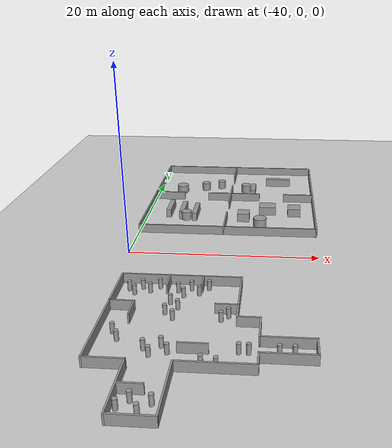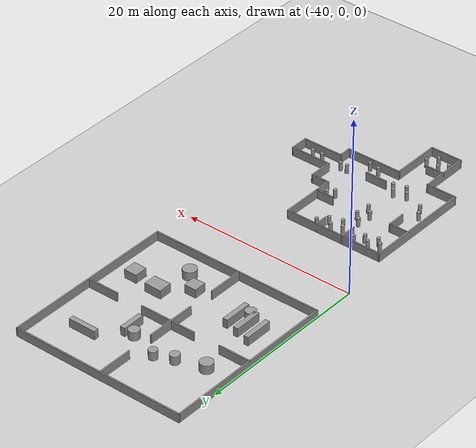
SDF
<sdf version="1.6">
 <world name="martha_training_islands">
  <include><uri>model://sun</uri></include>
  <include><uri>model://ground_plane</uri></include>
  <model name="four_rooms__four_rooms_obstacles">
   <pose>-30 15 0 0 0 0</pose>
   <static>true</static>
   <link name="body">
    <collision name="col_0">
     <pose>0.0000 -10.0000 0.5000 0 0 0.00000</pose>
     <geometry><box><size>20.1500 0.1500 1.0000</size></box></geometry>
    </collision>
    <visual name="vis_0">
     <pose>0.0000 -10.0000 0.5000 0 0 0.00000</pose>
     <geometry><box><size>20.1500 0.1500 1.0000</size></box></geometry>
     <material>
      <script><uri>file://media/materials/scripts/gazebo.material</uri><name>Gazebo/Grey</name></script>
     </material>
    </visual>
    <collision name="col_1">
     <pose>10.0000 0.0000 0.5000 0 0 1.57080</pose>
     <geometry><box><size>20.1500 0.1500 1.0000</size></box></geometry>
    </collision>
    <visual name="vis_1">
     <pose>10.0000 0.0000 0.5000 0 0 1.57080</pose>
     <geometry><box><size>20.1500 0.1500 1.0000</size></box></geometry>
     <material>
      <script><uri>file://media/materials/scripts/gazebo.material</uri><name>Gazebo/Grey</name></script>
     </material>
    </visual>
    <collision name="col_2">
     <pose>0.0000 10.0000 0.5000 0 0 3.14159</pose>
     <geometry><box><size>20.1500 0.1500 1.0000</size></box></geometry>
    </collision>
    <visual name="vis_2">
     <pose>0.0000 10.0000 0.5000 0 0 3.14159</pose>
     <geometry><box><size>20.1500 0.1500 1.0000</size></box></geometry>
     <material>
      <script><uri>file://media/materials/scripts/gazebo.material</uri><name>Gazebo/Grey</name></script>
     </material>
    </visual>
    <collision name="col_3">
     <pose>-10.0000 0.0000 0.5000 0 0 -1.57080</pose>
     <geometry><box><size>20.1500 0.1500 1.0000</size></box></geometry>
    </collision>
    <visual name="vis_3">
     <pose>-10.0000 0.0000 0.5000 0 0 -1.57080</pose>
     <geometry><box><size>20.1500 0.1500 1.0000</size></box></geometry>
     <material>
      <script><uri>file://media/materials/scripts/gazebo.material</uri><name>Gazebo/Grey</name></script>
     </material>
    </visual>
    <collision name="col_4">
     <pose>-0.4000 -8.0000 0.5000 0 0 1.57080</pose>
     <geometry><box><size>4.1500 0.1500 1.0000</size></box></geometry>
    </collision>
    <visual name="vis_4">
     <pose>-0.4000 -8.0000 0.5000 0 0 1.57080</pose>
     <geometry><box><size>4.1500 0.1500 1.0000</size></box></geometry>
     <material>
      <script><uri>file://media/materials/scripts/gazebo.material</uri><name>Gazebo/Grey</name></script>
     </material>
    </visual>
    <collision name="col_5">
     <pose>-0.4000 0.0000 0.5000 0 0 1.57080</pose>
     <geometry><box><size>5.7500 0.1500 1.0000</size></box></geometry>
    </collision>
    <visual name="vis_5">
     <pose>-0.4000 0.0000 0.5000 0 0 1.57080</pose>
     <geometry><box><size>5.7500 0.1500 1.0000</size></box></geometry>
     <material>
      <script><uri>file://media/materials/scripts/gazebo.material</uri><name>Gazebo/Grey</name></script>
     </material>
    </visual>
    <collision name="col_6">
     <pose>-0.4000 8.0000 0.5000 0 0 1.57080</pose>
     <geometry><box><size>4.1500 0.1500 1.0000</size></box></geometry>
    </collision>
    <visual name="vis_6">
     <pose>-0.4000 8.0000 0.5000 0 0 1.57080</pose>
     <geometry><box><size>4.1500 0.1500 1.0000</size></box></geometry>
     <material>
      <script><uri>file://media/materials/scripts/gazebo.material</uri><name>Gazebo/Grey</name></script>
     </material>
    </visual>
    <collision name="col_7">
     <pose>-8.2000 0.0000 0.5000 0 0 0.00000</pose>
     <geometry><box><size>3.7500 0.1500 1.0000</size></box></geometry>
    </collision>
    <visual name="vis_7">
     <pose>-8.2000 0.0000 0.5000 0 0 0.00000</pose>
     <geometry><box><size>3.7500 0.1500 1.0000</size></box></geometry>
     <material>
      <script><uri>file://media/materials/scripts/gazebo.material</uri><name>Gazebo/Grey</name></script>
     </material>
    </visual>
    <collision name="col_8">
     <pose>0.0000 0.0000 0.5000 0 0 0.00000</pose>
     <geometry><box><size>6.5500 0.1500 1.0000</size></box></geometry>
    </collision>
    <visual name="vis_8">
     <pose>0.0000 0.0000 0.5000 0 0 0.00000</pose>
     <geometry><box><size>6.5500 0.1500 1.0000</size></box></geometry>
     <material>
      <script><uri>file://media/materials/scripts/gazebo.material</uri><name>Gazebo/Grey</name></script>
     </material>
    </visual>
    <collision name="col_9">
     <pose>8.2000 0.0000 0.5000 0 0 0.00000</pose>
     <geometry><box><size>3.7500 0.1500 1.0000</size></box></geometry>
    </collision>
    <visual name="vis_9">
     <pose>8.2000 0.0000 0.5000 0 0 0.00000</pose>
     <geometry><box><size>3.7500 0.1500 1.0000</size></box></geometry>
     <material>
      <script><uri>file://media/materials/scripts/gazebo.material</uri><name>Gazebo/Grey</name></script>
     </material>
    </visual>
    <collision name="col_10">
     <pose>5.6000 5.6000 0.5000 0 0 0.00000</pose>
     <geometry><box><size>3.2000 0.5600 1.0000</size></box></geometry>
    </collision>
    <visual name="vis_10">
     <pose>5.6000 5.6000 0.5000 0 0 0.00000</pose>
     <geometry><box><size>3.2000 0.5600 1.0000</size></box></geometry>
     <material>
      <script><uri>file://media/materials/scripts/gazebo.material</uri><name>Gazebo/Grey</name></script>
     </material>
    </visual>
    <collision name="col_11">
     <pose>4.4000 -3.6000 0.5000 0 0 0.00000</pose>
     <geometry><box><size>2.0000 1.5000 1.0000</size></box></geometry>
    </collision>
    <visual name="vis_11">
     <pose>4.4000 -3.6000 0.5000 0 0 0.00000</pose>
     <geometry><box><size>2.0000 1.5000 1.0000</size></box></geometry>
     <material>
      <script><uri>file://media/materials/scripts/gazebo.material</uri><name>Gazebo/Grey</name></script>
     </material>
    </visual>
    <collision name="col_12">
     <pose>1.6000 -5.8000 0.5000 0 0 0.00000</pose>
     <geometry><box><size>1.4000 1.4000 1.0000</size></box></geometry>
    </collision>
    <visual name="vis_12">
     <pose>1.6000 -5.8000 0.5000 0 0 0.00000</pose>
     <geometry><box><size>1.4000 1.4000 1.0000</size></box></geometry>
     <material>
      <script><uri>file://media/materials/scripts/gazebo.material</uri><name>Gazebo/Grey</name></script>
     </material>
    </visual>
    <collision name="col_13">
     <pose>-7.4000 -4.2000 0.5000 0 0 0.00000</pose>
     <geometry><box><size>0.5600 3.2000 1.0000</size></box></geometry>
    </collision>
    <visual name="vis_13">
     <pose>-7.4000 -4.2000 0.5000 0 0 0.00000</pose>
     <geometry><box><size>0.5600 3.2000 1.0000</size></box></geometry>
     <material>
      <script><uri>file://media/materials/scripts/gazebo.material</uri><name>Gazebo/Grey</name></script>
     </material>
    </visual>
    <collision name="col_14">
     <pose>-5.8000 -4.6000 0.5000 0 0 0.00000</pose>
     <geometry><box><size>0.5600 3.2000 1.0000</size></box></geometry>
    </collision>
    <visual name="vis_14">
     <pose>-5.8000 -4.6000 0.5000 0 0 0.00000</pose>
     <geometry><box><size>0.5600 3.2000 1.0000</size></box></geometry>
     <material>
      <script><uri>file://media/materials/scripts/gazebo.material</uri><name>Gazebo/Grey</name></script>
     </material>
    </visual>
    <collision name="col_15">
     <pose>-4.2000 -5.0000 0.5000 0 0 0.00000</pose>
     <geometry><box><size>0.5600 3.2000 1.0000</size></box></geometry>
    </collision>
    <visual name="vis_15">
     <pose>-4.2000 -5.0000 0.5000 0 0 0.00000</pose>
     <geometry><box><size>0.5600 3.2000 1.0000</size></box></geometry>
     <material>
      <script><uri>file://media/materials/scripts/gazebo.material</uri><name>Gazebo/Grey</name></script>
     </material>
    </visual>
    <collision name="col_16">
     <pose>2.4000 2.4000 0.5000 0 0 0.00000</pose>
     <geometry><box><size>0.5600 2.6000 1.0000</size></box></geometry>
    </collision>
    <visual name="vis_16">
     <pose>2.4000 2.4000 0.5000 0 0 0.00000</pose>
     <geometry><box><size>0.5600 2.6000 1.0000</size></box></geometry>
     <material>
      <script><uri>file://media/materials/scripts/gazebo.material</uri><name>Gazebo/Grey</name></script>
     </material>
    </visual>
    <collision name="col_17">
     <pose>7.6000 -4.0000 0.5000 0 0 0.00000</pose>
     <geometry><box><size>1.5000 1.5000 1.0000</size></box></geometry>
    </collision>
    <visual name="vis_17">
     <pose>7.6000 -4.0000 0.5000 0 0 0.00000</pose>
     <geometry><box><size>1.5000 1.5000 1.0000</size></box></geometry>
     <material>
      <script><uri>file://media/materials/scripts/gazebo.material</uri><name>Gazebo/Grey</name></script>
     </material>
    </visual>
    <collision name="col_18">
     <pose>-7.0000 2.6000 0.5000 0 0 0.00000</pose>
     <geometry><cylinder><radius>0.7200</radius><length>1.0000</length></cylinder></geometry>
    </collision>
    <visual name="vis_18">
     <pose>-7.0000 2.6000 0.5000 0 0 0.00000</pose>
     <geometry><cylinder><radius>0.7200</radius><length>1.0000</length></cylinder></geometry>
     <material>
      <script><uri>file://media/materials/scripts/gazebo.material</uri><name>Gazebo/Grey</name></script>
     </material>
    </visual>
    <collision name="col_19">
     <pose>-4.0000 3.6000 0.5000 0 0 0.00000</pose>
     <geometry><cylinder><radius>0.5200</radius><length>1.0000</length></cylinder></geometry>
    </collision>
    <visual name="vis_19">
     <pose>-4.0000 3.6000 0.5000 0 0 0.00000</pose>
     <geometry><cylinder><radius>0.5200</radius><length>1.0000</length></cylinder></geometry>
     <material>
      <script><uri>file://media/materials/scripts/gazebo.material</uri><name>Gazebo/Grey</name></script>
     </material>
    </visual>
    <collision name="col_20">
     <pose>-2.0000 4.4000 0.5000 0 0 0.00000</pose>
     <geometry><cylinder><radius>0.4800</radius><length>1.0000</length></cylinder></geometry>
    </collision>
    <visual name="vis_20">
     <pose>-2.0000 4.4000 0.5000 0 0 0.00000</pose>
     <geometry><cylinder><radius>0.4800</radius><length>1.0000</length></cylinder></geometry>
     <material>
      <script><uri>file://media/materials/scripts/gazebo.material</uri><name>Gazebo/Grey</name></script>
     </material>
    </visual>
    <collision name="col_21">
     <pose>1.4000 3.2000 0.5000 0 0 0.00000</pose>
     <geometry><cylinder><radius>0.6000</radius><length>1.0000</length></cylinder></geometry>
    </collision>
    <visual name="vis_21">
     <pose>1.4000 3.2000 0.5000 0 0 0.00000</pose>
     <geometry><cylinder><radius>0.6000</radius><length>1.0000</length></cylinder></geometry>
     <material>
      <script><uri>file://media/materials/scripts/gazebo.material</uri><name>Gazebo/Grey</name></script>
     </material>
    </visual>
    <collision name="col_22">
     <pose>3.6000 -7.4000 0.5000 0 0 0.00000</pose>
     <geometry><cylinder><radius>0.7600</radius><length>1.0000</length></cylinder></geometry>
    </collision>
    <visual name="vis_22">
     <pose>3.6000 -7.4000 0.5000 0 0 0.00000</pose>
     <geometry><cylinder><radius>0.7600</radius><length>1.0000</length></cylinder></geometry>
     <material>
      <script><uri>file://media/materials/scripts/gazebo.material</uri><name>Gazebo/Grey</name></script>
     </material>
    </visual>
    <collision name="col_23">
     <pose>-5.2000 -6.0000 0.5000 0 0 0.00000</pose>
     <geometry><cylinder><radius>0.6000</radius><length>1.0000</length></cylinder></geometry>
    </collision>
    <visual name="vis_23">
     <pose>-5.2000 -6.0000 0.5000 0 0 0.00000</pose>
     <geometry><cylinder><radius>0.6000</radius><length>1.0000</length></cylinder></geometry>
     <material>
      <script><uri>file://media/materials/scripts/gazebo.material</uri><name>Gazebo/Grey</name></script>
     </material>
    </visual>
   </link>
  </model>
  <model name="roblab__roblab_obstacles">
   <pose>-30 -15 0 0 0 0</pose>
   <static>true</static>
   <link name="body">
    <collision name="col_0">
     <pose>-3.3000 9.0000 0.5000 0 0 0.00000</pose>
     <geometry><box><size>11.5500 0.1500 1.0000</size></box></geometry>
    </collision>
    <visual name="vis_0">
     <pose>-3.3000 9.0000 0.5000 0 0 0.00000</pose>
     <geometry><box><size>11.5500 0.1500 1.0000</size></box></geometry>
     <material>
      <script><uri>file://media/materials/scripts/gazebo.material</uri><name>Gazebo/Grey</name></script>
     </material>
    </visual>
    <collision name="col_1">
     <pose>2.4000 5.8000 0.5000 0 0 -1.57080</pose>
     <geometry><box><size>6.5500 0.1500 1.0000</size></box></geometry>
    </collision>
    <visual name="vis_1">
     <pose>2.4000 5.8000 0.5000 0 0 -1.57080</pose>
     <geometry><box><size>6.5500 0.1500 1.0000</size></box></geometry>
     <material>
      <script><uri>file://media/materials/scripts/gazebo.material</uri><name>Gazebo/Grey</name></script>
     </material>
    </visual>
    <collision name="col_2">
     <pose>3.4000 2.6000 0.5000 0 0 0.00000</pose>
     <geometry><box><size>2.1500 0.1500 1.0000</size></box></geometry>
    </collision>
    <visual name="vis_2">
     <pose>3.4000 2.6000 0.5000 0 0 0.00000</pose>
     <geometry><box><size>2.1500 0.1500 1.0000</size></box></geometry>
     <material>
      <script><uri>file://media/materials/scripts/gazebo.material</uri><name>Gazebo/Grey</name></script>
     </material>
    </visual>
    <collision name="col_3">
     <pose>4.4000 1.3000 0.5000 0 0 -1.57080</pose>
     <geometry><box><size>2.7500 0.1500 1.0000</size></box></geometry>
    </collision>
    <visual name="vis_3">
     <pose>4.4000 1.3000 0.5000 0 0 -1.57080</pose>
     <geometry><box><size>2.7500 0.1500 1.0000</size></box></geometry>
     <material>
      <script><uri>file://media/materials/scripts/gazebo.material</uri><name>Gazebo/Grey</name></script>
     </material>
    </visual>
    <collision name="col_4">
     <pose>6.7000 0.0000 0.5000 0 0 0.00000</pose>
     <geometry><box><size>4.7500 0.1500 1.0000</size></box></geometry>
    </collision>
    <visual name="vis_4">
     <pose>6.7000 0.0000 0.5000 0 0 0.00000</pose>
     <geometry><box><size>4.7500 0.1500 1.0000</size></box></geometry>
     <material>
      <script><uri>file://media/materials/scripts/gazebo.material</uri><name>Gazebo/Grey</name></script>
     </material>
    </visual>
    <collision name="col_5">
     <pose>9.0000 -1.0000 0.5000 0 0 -1.57080</pose>
     <geometry><box><size>2.1500 0.1500 1.0000</size></box></geometry>
    </collision>
    <visual name="vis_5">
     <pose>9.0000 -1.0000 0.5000 0 0 -1.57080</pose>
     <geometry><box><size>2.1500 0.1500 1.0000</size></box></geometry>
     <material>
      <script><uri>file://media/materials/scripts/gazebo.material</uri><name>Gazebo/Grey</name></script>
     </material>
    </visual>
    <collision name="col_6">
     <pose>6.7000 -2.0000 0.5000 0 0 3.14159</pose>
     <geometry><box><size>4.7500 0.1500 1.0000</size></box></geometry>
    </collision>
    <visual name="vis_6">
     <pose>6.7000 -2.0000 0.5000 0 0 3.14159</pose>
     <geometry><box><size>4.7500 0.1500 1.0000</size></box></geometry>
     <material>
      <script><uri>file://media/materials/scripts/gazebo.material</uri><name>Gazebo/Grey</name></script>
     </material>
    </visual>
    <collision name="col_7">
     <pose>4.4000 -2.7000 0.5000 0 0 -1.57080</pose>
     <geometry><box><size>1.5500 0.1500 1.0000</size></box></geometry>
    </collision>
    <visual name="vis_7">
     <pose>4.4000 -2.7000 0.5000 0 0 -1.57080</pose>
     <geometry><box><size>1.5500 0.1500 1.0000</size></box></geometry>
     <material>
      <script><uri>file://media/materials/scripts/gazebo.material</uri><name>Gazebo/Grey</name></script>
     </material>
    </visual>
    <collision name="col_8">
     <pose>1.2000 -3.4000 0.5000 0 0 3.14159</pose>
     <geometry><box><size>6.5500 0.1500 1.0000</size></box></geometry>
    </collision>
    <visual name="vis_8">
     <pose>1.2000 -3.4000 0.5000 0 0 3.14159</pose>
     <geometry><box><size>6.5500 0.1500 1.0000</size></box></geometry>
     <material>
      <script><uri>file://media/materials/scripts/gazebo.material</uri><name>Gazebo/Grey</name></script>
     </material>
    </visual>
    <collision name="col_9">
     <pose>-2.0000 -6.2000 0.5000 0 0 -1.57080</pose>
     <geometry><box><size>5.7500 0.1500 1.0000</size></box></geometry>
    </collision>
    <visual name="vis_9">
     <pose>-2.0000 -6.2000 0.5000 0 0 -1.57080</pose>
     <geometry><box><size>5.7500 0.1500 1.0000</size></box></geometry>
     <material>
      <script><uri>file://media/materials/scripts/gazebo.material</uri><name>Gazebo/Grey</name></script>
     </material>
    </visual>
    <collision name="col_10">
     <pose>-3.8000 -9.0000 0.5000 0 0 3.14159</pose>
     <geometry><box><size>3.7500 0.1500 1.0000</size></box></geometry>
    </collision>
    <visual name="vis_10">
     <pose>-3.8000 -9.0000 0.5000 0 0 3.14159</pose>
     <geometry><box><size>3.7500 0.1500 1.0000</size></box></geometry>
     <material>
      <script><uri>file://media/materials/scripts/gazebo.material</uri><name>Gazebo/Grey</name></script>
     </material>
    </visual>
    <collision name="col_11">
     <pose>-5.6000 -6.2000 0.5000 0 0 1.57080</pose>
     <geometry><box><size>5.7500 0.1500 1.0000</size></box></geometry>
    </collision>
    <visual name="vis_11">
     <pose>-5.6000 -6.2000 0.5000 0 0 1.57080</pose>
     <geometry><box><size>5.7500 0.1500 1.0000</size></box></geometry>
     <material>
      <script><uri>file://media/materials/scripts/gazebo.material</uri><name>Gazebo/Grey</name></script>
     </material>
    </visual>
    <collision name="col_12">
     <pose>-7.3000 -3.4000 0.5000 0 0 3.14159</pose>
     <geometry><box><size>3.5500 0.1500 1.0000</size></box></geometry>
    </collision>
    <visual name="vis_12">
     <pose>-7.3000 -3.4000 0.5000 0 0 3.14159</pose>
     <geometry><box><size>3.5500 0.1500 1.0000</size></box></geometry>
     <material>
      <script><uri>file://media/materials/scripts/gazebo.material</uri><name>Gazebo/Grey</name></script>
     </material>
    </visual>
    <collision name="col_13">
     <pose>-9.0000 2.8000 0.5000 0 0 1.57080</pose>
     <geometry><box><size>12.5500 0.1500 1.0000</size></box></geometry>
    </collision>
    <visual name="vis_13">
     <pose>-9.0000 2.8000 0.5000 0 0 1.57080</pose>
     <geometry><box><size>12.5500 0.1500 1.0000</size></box></geometry>
     <material>
      <script><uri>file://media/materials/scripts/gazebo.material</uri><name>Gazebo/Grey</name></script>
     </material>
    </visual>
    <collision name="col_14">
     <pose>-7.9000 4.4000 0.5000 0 0 0.00000</pose>
     <geometry><box><size>2.3500 0.1500 1.0000</size></box></geometry>
    </collision>
    <visual name="vis_14">
     <pose>-7.9000 4.4000 0.5000 0 0 0.00000</pose>
     <geometry><box><size>2.3500 0.1500 1.0000</size></box></geometry>
     <material>
      <script><uri>file://media/materials/scripts/gazebo.material</uri><name>Gazebo/Grey</name></script>
     </material>
    </visual>
    <collision name="col_15">
     <pose>-6.8000 3.4000 0.5000 0 0 -1.57080</pose>
     <geometry><box><size>2.1500 0.1500 1.0000</size></box></geometry>
    </collision>
    <visual name="vis_15">
     <pose>-6.8000 3.4000 0.5000 0 0 -1.57080</pose>
     <geometry><box><size>2.1500 0.1500 1.0000</size></box></geometry>
     <material>
      <script><uri>file://media/materials/scripts/gazebo.material</uri><name>Gazebo/Grey</name></script>
     </material>
    </visual>
    <collision name="col_16">
     <pose>-4.4000 8.1000 0.5000 0 0 -1.57080</pose>
     <geometry><box><size>1.9500 0.1500 1.0000</size></box></geometry>
    </collision>
    <visual name="vis_16">
     <pose>-4.4000 8.1000 0.5000 0 0 -1.57080</pose>
     <geometry><box><size>1.9500 0.1500 1.0000</size></box></geometry>
     <material>
      <script><uri>file://media/materials/scripts/gazebo.material</uri><name>Gazebo/Grey</name></script>
     </material>
    </visual>
    <collision name="col_17">
     <pose>-1.2000 8.3000 0.5000 0 0 -1.57080</pose>
     <geometry><box><size>1.5500 0.1500 1.0000</size></box></geometry>
    </collision>
    <visual name="vis_17">
     <pose>-1.2000 8.3000 0.5000 0 0 -1.57080</pose>
     <geometry><box><size>1.5500 0.1500 1.0000</size></box></geometry>
     <material>
      <script><uri>file://media/materials/scripts/gazebo.material</uri><name>Gazebo/Grey</name></script>
     </material>
    </visual>
    <collision name="col_18">
     <pose>1.4000 4.4000 0.5000 0 0 0.00000</pose>
     <geometry><box><size>2.1500 0.1500 1.0000</size></box></geometry>
    </collision>
    <visual name="vis_18">
     <pose>1.4000 4.4000 0.5000 0 0 0.00000</pose>
     <geometry><box><size>2.1500 0.1500 1.0000</size></box></geometry>
     <material>
      <script><uri>file://media/materials/scripts/gazebo.material</uri><name>Gazebo/Grey</name></script>
     </material>
    </visual>
    <collision name="col_19">
     <pose>-4.6000 -6.0000 0.5000 0 0 0.00000</pose>
     <geometry><box><size>2.1500 0.1500 1.0000</size></box></geometry>
    </collision>
    <visual name="vis_19">
     <pose>-4.6000 -6.0000 0.5000 0 0 0.00000</pose>
     <geometry><box><size>2.1500 0.1500 1.0000</size></box></geometry>
     <material>
      <script><uri>file://media/materials/scripts/gazebo.material</uri><name>Gazebo/Grey</name></script>
     </material>
    </visual>
    <collision name="col_20">
     <pose>-0.8000 -1.2000 0.5000 0 0 0.00000</pose>
     <geometry><box><size>2.5500 0.1500 1.0000</size></box></geometry>
    </collision>
    <visual name="vis_20">
     <pose>-0.8000 -1.2000 0.5000 0 0 0.00000</pose>
     <geometry><box><size>2.5500 0.1500 1.0000</size></box></geometry>
     <material>
      <script><uri>file://media/materials/scripts/gazebo.material</uri><name>Gazebo/Grey</name></script>
     </material>
    </visual>
    <collision name="col_21">
     <pose>-8.0000 7.6000 0.5000 0 0 0.00000</pose>
     <geometry><cylinder><radius>0.2000</radius><length>1.0000</length></cylinder></geometry>
    </collision>
    <visual name="vis_21">
     <pose>-8.0000 7.6000 0.5000 0 0 0.00000</pose>
     <geometry><cylinder><radius>0.2000</radius><length>1.0000</length></cylinder></geometry>
     <material>
      <script><uri>file://media/materials/scripts/gazebo.material</uri><name>Gazebo/Grey</name></script>
     </material>
    </visual>
    <collision name="col_22">
     <pose>-7.4000 7.0000 0.5000 0 0 0.00000</pose>
     <geometry><cylinder><radius>0.2000</radius><length>1.0000</length></cylinder></geometry>
    </collision>
    <visual name="vis_22">
     <pose>-7.4000 7.0000 0.5000 0 0 0.00000</pose>
     <geometry><cylinder><radius>0.2000</radius><length>1.0000</length></cylinder></geometry>
     <material>
      <script><uri>file://media/materials/scripts/gazebo.material</uri><name>Gazebo/Grey</name></script>
     </material>
    </visual>
    <collision name="col_23">
     <pose>-6.8000 8.0000 0.5000 0 0 0.00000</pose>
     <geometry><cylinder><radius>0.2000</radius><length>1.0000</length></cylinder></geometry>
    </collision>
    <visual name="vis_23">
     <pose>-6.8000 8.0000 0.5000 0 0 0.00000</pose>
     <geometry><cylinder><radius>0.2000</radius><length>1.0000</length></cylinder></geometry>
     <material>
      <script><uri>file://media/materials/scripts/gazebo.material</uri><name>Gazebo/Grey</name></script>
     </material>
    </visual>
    <collision name="col_24">
     <pose>-6.0000 7.4000 0.5000 0 0 0.00000</pose>
     <geometry><cylinder><radius>0.2000</radius><length>1.0000</length></cylinder></geometry>
    </collision>
    <visual name="vis_24">
     <pose>-6.0000 7.4000 0.5000 0 0 0.00000</pose>
     <geometry><cylinder><radius>0.2000</radius><length>1.0000</length></cylinder></geometry>
     <material>
      <script><uri>file://media/materials/scripts/gazebo.material</uri><name>Gazebo/Grey</name></script>
     </material>
    </visual>
    <collision name="col_25">
     <pose>-5.2000 8.2000 0.5000 0 0 0.00000</pose>
     <geometry><cylinder><radius>0.2000</radius><length>1.0000</length></cylinder></geometry>
    </collision>
    <visual name="vis_25">
     <pose>-5.2000 8.2000 0.5000 0 0 0.00000</pose>
     <geometry><cylinder><radius>0.2000</radius><length>1.0000</length></cylinder></geometry>
     <material>
      <script><uri>file://media/materials/scripts/gazebo.material</uri><name>Gazebo/Grey</name></script>
     </material>
    </visual>
    <collision name="col_26">
     <pose>-3.4000 7.6000 0.5000 0 0 0.00000</pose>
     <geometry><cylinder><radius>0.2000</radius><length>1.0000</length></cylinder></geometry>
    </collision>
    <visual name="vis_26">
     <pose>-3.4000 7.6000 0.5000 0 0 0.00000</pose>
     <geometry><cylinder><radius>0.2000</radius><length>1.0000</length></cylinder></geometry>
     <material>
      <script><uri>file://media/materials/scripts/gazebo.material</uri><name>Gazebo/Grey</name></script>
     </material>
    </visual>
    <collision name="col_27">
     <pose>-2.8000 6.8000 0.5000 0 0 0.00000</pose>
     <geometry><cylinder><radius>0.2000</radius><length>1.0000</length></cylinder></geometry>
    </collision>
    <visual name="vis_27">
     <pose>-2.8000 6.8000 0.5000 0 0 0.00000</pose>
     <geometry><cylinder><radius>0.2000</radius><length>1.0000</length></cylinder></geometry>
     <material>
      <script><uri>file://media/materials/scripts/gazebo.material</uri><name>Gazebo/Grey</name></script>
     </material>
    </visual>
    <collision name="col_28">
     <pose>-2.2000 8.0000 0.5000 0 0 0.00000</pose>
     <geometry><cylinder><radius>0.2000</radius><length>1.0000</length></cylinder></geometry>
    </collision>
    <visual name="vis_28">
     <pose>-2.2000 8.0000 0.5000 0 0 0.00000</pose>
     <geometry><cylinder><radius>0.2000</radius><length>1.0000</length></cylinder></geometry>
     <material>
      <script><uri>file://media/materials/scripts/gazebo.material</uri><name>Gazebo/Grey</name></script>
     </material>
    </visual>
    <collision name="col_29">
     <pose>-1.4000 7.2000 0.5000 0 0 0.00000</pose>
     <geometry><cylinder><radius>0.2000</radius><length>1.0000</length></cylinder></geometry>
    </collision>
    <visual name="vis_29">
     <pose>-1.4000 7.2000 0.5000 0 0 0.00000</pose>
     <geometry><cylinder><radius>0.2000</radius><length>1.0000</length></cylinder></geometry>
     <material>
      <script><uri>file://media/materials/scripts/gazebo.material</uri><name>Gazebo/Grey</name></script>
     </material>
    </visual>
    <collision name="col_30">
     <pose>-0.6000 8.2000 0.5000 0 0 0.00000</pose>
     <geometry><cylinder><radius>0.2000</radius><length>1.0000</length></cylinder></geometry>
    </collision>
    <visual name="vis_30">
     <pose>-0.6000 8.2000 0.5000 0 0 0.00000</pose>
     <geometry><cylinder><radius>0.2000</radius><length>1.0000</length></cylinder></geometry>
     <material>
      <script><uri>file://media/materials/scripts/gazebo.material</uri><name>Gazebo/Grey</name></script>
     </material>
    </visual>
    <collision name="col_31">
     <pose>-3.8000 5.6000 0.5000 0 0 0.00000</pose>
     <geometry><cylinder><radius>0.2000</radius><length>1.0000</length></cylinder></geometry>
    </collision>
    <visual name="vis_31">
     <pose>-3.8000 5.6000 0.5000 0 0 0.00000</pose>
     <geometry><cylinder><radius>0.2000</radius><length>1.0000</length></cylinder></geometry>
     <material>
      <script><uri>file://media/materials/scripts/gazebo.material</uri><name>Gazebo/Grey</name></script>
     </material>
    </visual>
    <collision name="col_32">
     <pose>-3.0000 4.8000 0.5000 0 0 0.00000</pose>
     <geometry><cylinder><radius>0.2000</radius><length>1.0000</length></cylinder></geometry>
    </collision>
    <visual name="vis_32">
     <pose>-3.0000 4.8000 0.5000 0 0 0.00000</pose>
     <geometry><cylinder><radius>0.2000</radius><length>1.0000</length></cylinder></geometry>
     <material>
      <script><uri>file://media/materials/scripts/gazebo.material</uri><name>Gazebo/Grey</name></script>
     </material>
    </visual>
    <collision name="col_33">
     <pose>-4.0000 4.0000 0.5000 0 0 0.00000</pose>
     <geometry><cylinder><radius>0.2000</radius><length>1.0000</length></cylinder></geometry>
    </collision>
    <visual name="vis_33">
     <pose>-4.0000 4.0000 0.5000 0 0 0.00000</pose>
     <geometry><cylinder><radius>0.2000</radius><length>1.0000</length></cylinder></geometry>
     <material>
      <script><uri>file://media/materials/scripts/gazebo.material</uri><name>Gazebo/Grey</name></script>
     </material>
    </visual>
    <collision name="col_34">
     <pose>-3.2000 3.2000 0.5000 0 0 0.00000</pose>
     <geometry><cylinder><radius>0.2000</radius><length>1.0000</length></cylinder></geometry>
    </collision>
    <visual name="vis_34">
     <pose>-3.2000 3.2000 0.5000 0 0 0.00000</pose>
     <geometry><cylinder><radius>0.2000</radius><length>1.0000</length></cylinder></geometry>
     <material>
      <script><uri>file://media/materials/scripts/gazebo.material</uri><name>Gazebo/Grey</name></script>
     </material>
    </visual>
    <collision name="col_35">
     <pose>1.0000 3.2000 0.5000 0 0 0.00000</pose>
     <geometry><cylinder><radius>0.2000</radius><length>1.0000</length></cylinder></geometry>
    </collision>
    <visual name="vis_35">
     <pose>1.0000 3.2000 0.5000 0 0 0.00000</pose>
     <geometry><cylinder><radius>0.2000</radius><length>1.0000</length></cylinder></geometry>
     <material>
      <script><uri>file://media/materials/scripts/gazebo.material</uri><name>Gazebo/Grey</name></script>
     </material>
    </visual>
    <collision name="col_36">
     <pose>1.6000 3.8000 0.5000 0 0 0.00000</pose>
     <geometry><cylinder><radius>0.2000</radius><length>1.0000</length></cylinder></geometry>
    </collision>
    <visual name="vis_36">
     <pose>1.6000 3.8000 0.5000 0 0 0.00000</pose>
     <geometry><cylinder><radius>0.2000</radius><length>1.0000</length></cylinder></geometry>
     <material>
      <script><uri>file://media/materials/scripts/gazebo.material</uri><name>Gazebo/Grey</name></script>
     </material>
    </visual>
    <collision name="col_37">
     <pose>-4.8000 -1.0000 0.5000 0 0 0.00000</pose>
     <geometry><cylinder><radius>0.2000</radius><length>1.0000</length></cylinder></geometry>
    </collision>
    <visual name="vis_37">
     <pose>-4.8000 -1.0000 0.5000 0 0 0.00000</pose>
     <geometry><cylinder><radius>0.2000</radius><length>1.0000</length></cylinder></geometry>
     <material>
      <script><uri>file://media/materials/scripts/gazebo.material</uri><name>Gazebo/Grey</name></script>
     </material>
    </visual>
    <collision name="col_38">
     <pose>-4.2000 -1.8000 0.5000 0 0 0.00000</pose>
     <geometry><cylinder><radius>0.2000</radius><length>1.0000</length></cylinder></geometry>
    </collision>
    <visual name="vis_38">
     <pose>-4.2000 -1.8000 0.5000 0 0 0.00000</pose>
     <geometry><cylinder><radius>0.2000</radius><length>1.0000</length></cylinder></geometry>
     <material>
      <script><uri>file://media/materials/scripts/gazebo.material</uri><name>Gazebo/Grey</name></script>
     </material>
    </visual>
    <collision name="col_39">
     <pose>-3.4000 -0.6000 0.5000 0 0 0.00000</pose>
     <geometry><cylinder><radius>0.2000</radius><length>1.0000</length></cylinder></geometry>
    </collision>
    <visual name="vis_39">
     <pose>-3.4000 -0.6000 0.5000 0 0 0.00000</pose>
     <geometry><cylinder><radius>0.2000</radius><length>1.0000</length></cylinder></geometry>
     <material>
      <script><uri>file://media/materials/scripts/gazebo.material</uri><name>Gazebo/Grey</name></script>
     </material>
    </visual>
    <collision name="col_40">
     <pose>-2.8000 -1.4000 0.5000 0 0 0.00000</pose>
     <geometry><cylinder><radius>0.2000</radius><length>1.0000</length></cylinder></geometry>
    </collision>
    <visual name="vis_40">
     <pose>-2.8000 -1.4000 0.5000 0 0 0.00000</pose>
     <geometry><cylinder><radius>0.2000</radius><length>1.0000</length></cylinder></geometry>
     <material>
      <script><uri>file://media/materials/scripts/gazebo.material</uri><name>Gazebo/Grey</name></script>
     </material>
    </visual>
    <collision name="col_41">
     <pose>-7.8000 1.0000 0.5000 0 0 0.00000</pose>
     <geometry><cylinder><radius>0.2000</radius><length>1.0000</length></cylinder></geometry>
    </collision>
    <visual name="vis_41">
     <pose>-7.8000 1.0000 0.5000 0 0 0.00000</pose>
     <geometry><cylinder><radius>0.2000</radius><length>1.0000</length></cylinder></geometry>
     <material>
      <script><uri>file://media/materials/scripts/gazebo.material</uri><name>Gazebo/Grey</name></script>
     </material>
    </visual>
    <collision name="col_42">
     <pose>-7.2000 0.0000 0.5000 0 0 0.00000</pose>
     <geometry><cylinder><radius>0.2000</radius><length>1.0000</length></cylinder></geometry>
    </collision>
    <visual name="vis_42">
     <pose>-7.2000 0.0000 0.5000 0 0 0.00000</pose>
     <geometry><cylinder><radius>0.2000</radius><length>1.0000</length></cylinder></geometry>
     <material>
      <script><uri>file://media/materials/scripts/gazebo.material</uri><name>Gazebo/Grey</name></script>
     </material>
    </visual>
    <collision name="col_43">
     <pose>-5.2000 -7.6000 0.5000 0 0 0.00000</pose>
     <geometry><cylinder><radius>0.2000</radius><length>1.0000</length></cylinder></geometry>
    </collision>
    <visual name="vis_43">
     <pose>-5.2000 -7.6000 0.5000 0 0 0.00000</pose>
     <geometry><cylinder><radius>0.2000</radius><length>1.0000</length></cylinder></geometry>
     <material>
      <script><uri>file://media/materials/scripts/gazebo.material</uri><name>Gazebo/Grey</name></script>
     </material>
    </visual>
    <collision name="col_44">
     <pose>-4.4000 -6.8000 0.5000 0 0 0.00000</pose>
     <geometry><cylinder><radius>0.2000</radius><length>1.0000</length></cylinder></geometry>
    </collision>
    <visual name="vis_44">
     <pose>-4.4000 -6.8000 0.5000 0 0 0.00000</pose>
     <geometry><cylinder><radius>0.2000</radius><length>1.0000</length></cylinder></geometry>
     <material>
      <script><uri>file://media/materials/scripts/gazebo.material</uri><name>Gazebo/Grey</name></script>
     </material>
    </visual>
    <collision name="col_45">
     <pose>-3.6000 -8.0000 0.5000 0 0 0.00000</pose>
     <geometry><cylinder><radius>0.2000</radius><length>1.0000</length></cylinder></geometry>
    </collision>
    <visual name="vis_45">
     <pose>-3.6000 -8.0000 0.5000 0 0 0.00000</pose>
     <geometry><cylinder><radius>0.2000</radius><length>1.0000</length></cylinder></geometry>
     <material>
      <script><uri>file://media/materials/scripts/gazebo.material</uri><name>Gazebo/Grey</name></script>
     </material>
    </visual>
    <collision name="col_46">
     <pose>-2.8000 -7.0000 0.5000 0 0 0.00000</pose>
     <geometry><cylinder><radius>0.2000</radius><length>1.0000</length></cylinder></geometry>
    </collision>
    <visual name="vis_46">
     <pose>-2.8000 -7.0000 0.5000 0 0 0.00000</pose>
     <geometry><cylinder><radius>0.2000</radius><length>1.0000</length></cylinder></geometry>
     <material>
      <script><uri>file://media/materials/scripts/gazebo.material</uri><name>Gazebo/Grey</name></script>
     </material>
    </visual>
    <collision name="col_47">
     <pose>0.0000 -2.6000 0.5000 0 0 0.00000</pose>
     <geometry><cylinder><radius>0.2000</radius><length>1.0000</length></cylinder></geometry>
    </collision>
    <visual name="vis_47">
     <pose>0.0000 -2.6000 0.5000 0 0 0.00000</pose>
     <geometry><cylinder><radius>0.2000</radius><length>1.0000</length></cylinder></geometry>
     <material>
      <script><uri>file://media/materials/scripts/gazebo.material</uri><name>Gazebo/Grey</name></script>
     </material>
    </visual>
    <collision name="col_48">
     <pose>1.2000 -2.8000 0.5000 0 0 0.00000</pose>
     <geometry><cylinder><radius>0.2000</radius><length>1.0000</length></cylinder></geometry>
    </collision>
    <visual name="vis_48">
     <pose>1.2000 -2.8000 0.5000 0 0 0.00000</pose>
     <geometry><cylinder><radius>0.2000</radius><length>1.0000</length></cylinder></geometry>
     <material>
      <script><uri>file://media/materials/scripts/gazebo.material</uri><name>Gazebo/Grey</name></script>
     </material>
    </visual>
    <collision name="col_49">
     <pose>2.8000 -1.0000 0.5000 0 0 0.00000</pose>
     <geometry><cylinder><radius>0.2000</radius><length>1.0000</length></cylinder></geometry>
    </collision>
    <visual name="vis_49">
     <pose>2.8000 -1.0000 0.5000 0 0 0.00000</pose>
     <geometry><cylinder><radius>0.2000</radius><length>1.0000</length></cylinder></geometry>
     <material>
      <script><uri>file://media/materials/scripts/gazebo.material</uri><name>Gazebo/Grey</name></script>
     </material>
    </visual>
    <collision name="col_50">
     <pose>3.6000 -1.0000 0.5000 0 0 0.00000</pose>
     <geometry><cylinder><radius>0.2000</radius><length>1.0000</length></cylinder></geometry>
    </collision>
    <visual name="vis_50">
     <pose>3.6000 -1.0000 0.5000 0 0 0.00000</pose>
     <geometry><cylinder><radius>0.2000</radius><length>1.0000</length></cylinder></geometry>
     <material>
      <script><uri>file://media/materials/scripts/gazebo.material</uri><name>Gazebo/Grey</name></script>
     </material>
    </visual>
    <collision name="col_51">
     <pose>6.0000 -1.0000 0.5000 0 0 0.00000</pose>
     <geometry><cylinder><radius>0.2000</radius><length>1.0000</length></cylinder></geometry>
    </collision>
    <visual name="vis_51">
     <pose>6.0000 -1.0000 0.5000 0 0 0.00000</pose>
     <geometry><cylinder><radius>0.2000</radius><length>1.0000</length></cylinder></geometry>
     <material>
      <script><uri>file://media/materials/scripts/gazebo.material</uri><name>Gazebo/Grey</name></script>
     </material>
    </visual>
    <collision name="col_52">
     <pose>7.2000 -1.0000 0.5000 0 0 0.00000</pose>
     <geometry><cylinder><radius>0.2000</radius><length>1.0000</length></cylinder></geometry>
    </collision>
    <visual name="vis_52">
     <pose>7.2000 -1.0000 0.5000 0 0 0.00000</pose>
     <geometry><cylinder><radius>0.2000</radius><length>1.0000</length></cylinder></geometry>
     <material>
      <script><uri>file://media/materials/scripts/gazebo.material</uri><name>Gazebo/Grey</name></script>
     </material>
    </visual>
   </link>
  </model>
 </world>
</sdf>
